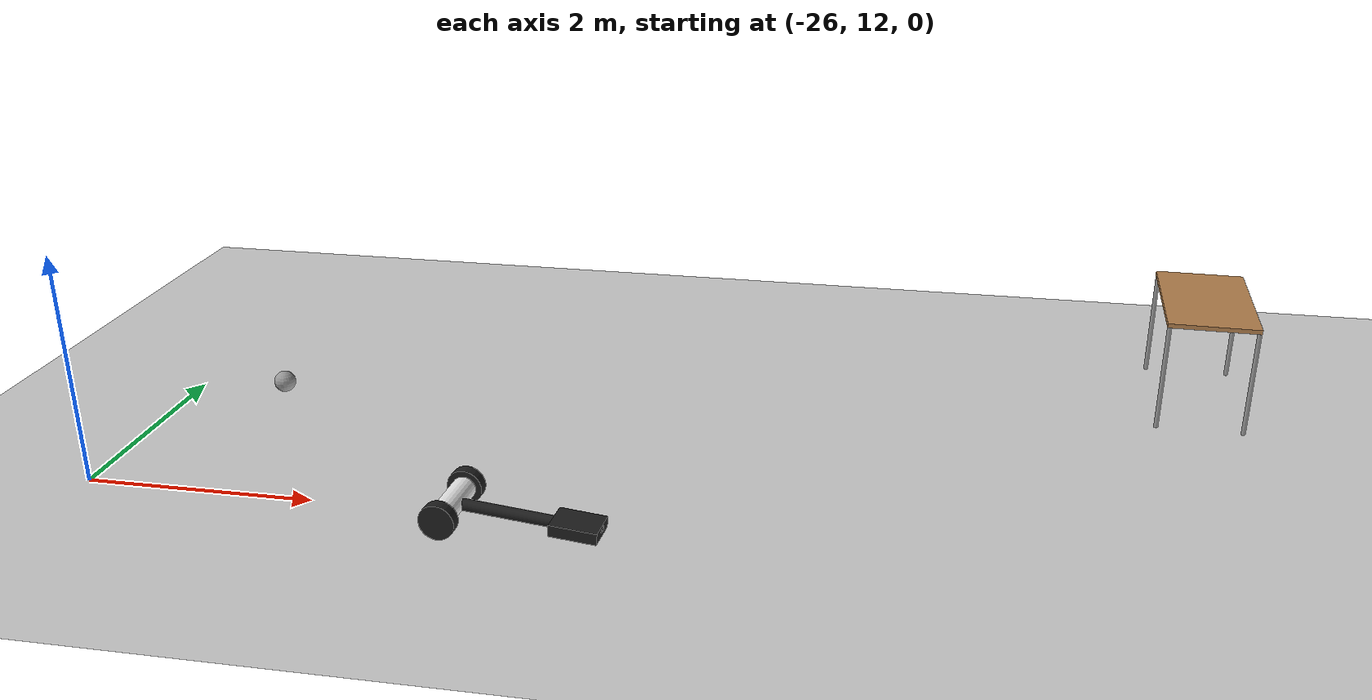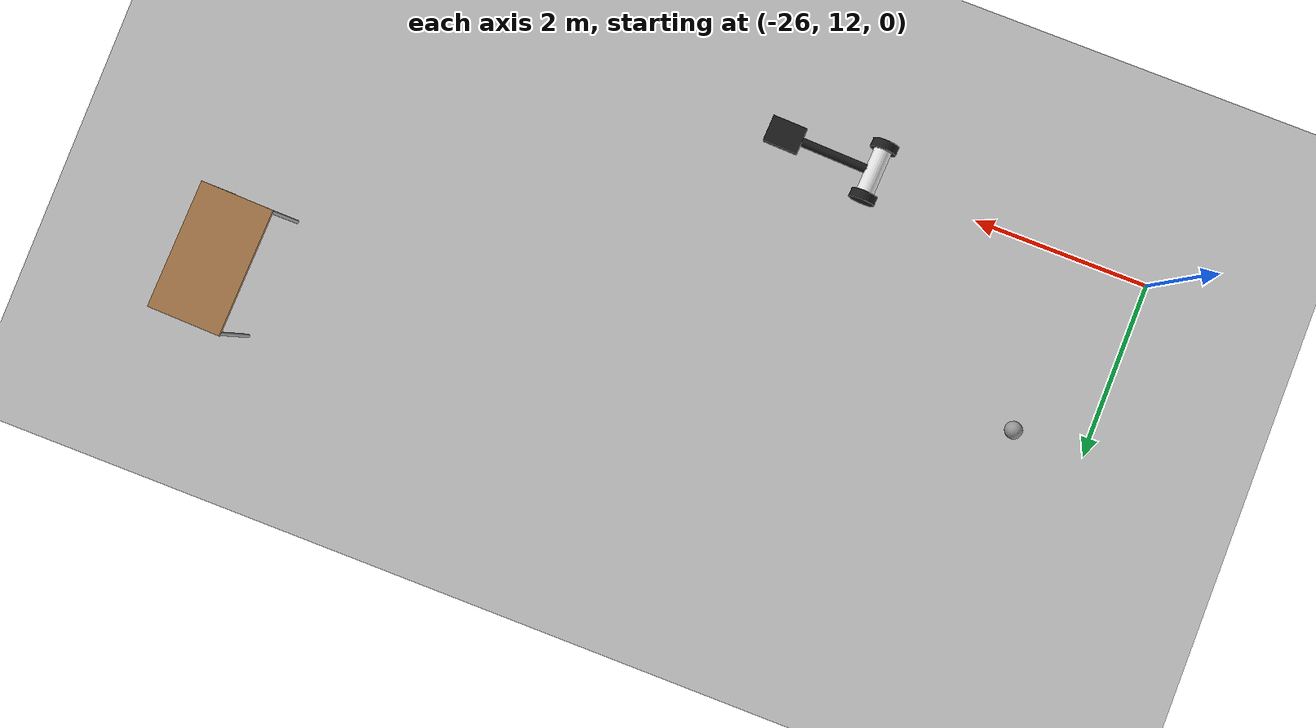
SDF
<sdf version="1.6">
 <world name="default">
  <model name="ground_plane">
   <static>1</static>
   <link name="link">
    <collision name="collision">
     <geometry><plane><normal>0 0 1</normal><size>100 100</size></plane></geometry>
     <surface><friction><ode><mu>100</mu><mu2>50</mu2></ode></friction></surface>
    </collision>
    <visual name="visual">
     <cast_shadows>0</cast_shadows>
     <geometry><plane><normal>0 0 1</normal><size>100 100</size></plane></geometry>
     <material>
      <script><uri>file://media/materials/scripts/gazebo.material</uri><name>Gazebo/Grey</name></script>
     </material>
    </visual>
   </link>
  </model>
  <model name="telepresence_robot">
   <link name="link_4">
    <pose>0 0 -0.15625 1.5707 -0 0</pose>
    <inertial>
     <mass>1</mass>
     <inertia><ixx>0.145833</ixx><ixy>0</ixy><ixz>0</ixz><iyy>0.145833</iyy><iyz>0</iyz><izz>0.125</izz></inertia>
    </inertial>
    <visual name="visual">
     <geometry><cylinder><radius>0.1</radius><length>0.5</length></cylinder></geometry>
     <material>
      <lighting>1</lighting>
      <script><uri>file://media/materials/scripts/gazebo.material</uri><name>Gazebo/White</name></script>
      <shader type="vertex"><normal_map>__default__</normal_map></shader>
     </material>
    </visual>
    <collision name="collision">
     <geometry><cylinder><radius>0.1</radius><length>0.5</length></cylinder></geometry>
     <surface>
      <friction>
       <ode><mu>1</mu><mu2>1</mu2><fdir1>0 0 0</fdir1><slip1>0</slip1><slip2>0</slip2></ode>
       <torsional>
        <coefficient>1</coefficient>
        <patch_radius>0</patch_radius>
        <surface_radius>0</surface_radius>
        <use_patch_radius>1</use_patch_radius>
        <ode><slip>0</slip></ode>
       </torsional>
      </friction>
      <bounce><restitution_coefficient>0</restitution_coefficient><threshold>1e+06</threshold></bounce>
      <contact>
       <collide_without_contact>0</collide_without_contact>
       <collide_without_contact_bitmask>1</collide_without_contact_bitmask>
       <collide_bitmask>1</collide_bitmask>
       <ode>
        <soft_cfm>0</soft_cfm>
        <soft_erp>0.2</soft_erp>
        <kp>1e+13</kp>
        <kd>1</kd>
        <max_vel>0.01</max_vel>
        <min_depth>0</min_depth>
       </ode>
       <bullet>
        <split_impulse>1</split_impulse>
        <split_impulse_penetration_threshold>-0.01</split_impulse_penetration_threshold>
        <soft_cfm>0</soft_cfm>
        <soft_erp>0.2</soft_erp>
        <kp>1e+13</kp>
        <kd>1</kd>
       </bullet>
      </contact>
     </surface>
    </collision>
   </link>
   <link name="link_5">
    <pose>0 -0.300024 -0.15625 1.5707 -0 0</pose>
    <inertial>
     <mass>1</mass>
     <inertia><ixx>0.145833</ixx><ixy>0</ixy><ixz>0</ixz><iyy>0.145833</iyy><iyz>0</iyz><izz>0.125</izz></inertia>
    </inertial>
    <visual name="visual">
     <geometry><cylinder><radius>0.15</radius><length>0.1</length></cylinder></geometry>
     <material>
      <lighting>1</lighting>
      <script><uri>file://media/materials/scripts/gazebo.material</uri><name>Gazebo/Black</name></script>
      <shader type="vertex"><normal_map>__default__</normal_map></shader>
     </material>
    </visual>
    <collision name="collision">
     <geometry><cylinder><radius>0.15</radius><length>0.1</length></cylinder></geometry>
     <surface>
      <friction>
       <ode><mu>1</mu><mu2>1</mu2><fdir1>0 0 0</fdir1><slip1>0</slip1><slip2>0</slip2></ode>
       <torsional>
        <coefficient>1</coefficient>
        <patch_radius>0</patch_radius>
        <surface_radius>0</surface_radius>
        <use_patch_radius>1</use_patch_radius>
        <ode><slip>0</slip></ode>
       </torsional>
      </friction>
      <bounce><restitution_coefficient>0</restitution_coefficient><threshold>1e+06</threshold></bounce>
      <contact>
       <collide_without_contact>0</collide_without_contact>
       <collide_without_contact_bitmask>1</collide_without_contact_bitmask>
       <collide_bitmask>1</collide_bitmask>
       <ode>
        <soft_cfm>0</soft_cfm>
        <soft_erp>0.2</soft_erp>
        <kp>1e+13</kp>
        <kd>1</kd>
        <max_vel>0.01</max_vel>
        <min_depth>0</min_depth>
       </ode>
       <bullet>
        <split_impulse>1</split_impulse>
        <split_impulse_penetration_threshold>-0.01</split_impulse_penetration_threshold>
        <soft_cfm>0</soft_cfm>
        <soft_erp>0.2</soft_erp>
        <kp>1e+13</kp>
        <kd>1</kd>
       </bullet>
      </contact>
     </surface>
    </collision>
   </link>
   <link name="link_5_clone">
    <pose>0 0.300024 -0.15625 1.5707 -0 0</pose>
    <inertial>
     <mass>1</mass>
     <inertia><ixx>0.145833</ixx><ixy>0</ixy><ixz>0</ixz><iyy>0.145833</iyy><iyz>0</iyz><izz>0.125</izz></inertia>
    </inertial>
    <visual name="visual">
     <geometry><cylinder><radius>0.15</radius><length>0.1</length></cylinder></geometry>
     <material>
      <lighting>1</lighting>
      <script><uri>file://media/materials/scripts/gazebo.material</uri><name>Gazebo/Black</name></script>
      <shader type="vertex"><normal_map>__default__</normal_map></shader>
     </material>
    </visual>
    <collision name="collision">
     <geometry><cylinder><radius>0.15</radius><length>0.1</length></cylinder></geometry>
     <surface>
      <friction>
       <ode><mu>1</mu><mu2>1</mu2><fdir1>0 0 0</fdir1><slip1>0</slip1><slip2>0</slip2></ode>
       <torsional>
        <coefficient>1</coefficient>
        <patch_radius>0</patch_radius>
        <surface_radius>0</surface_radius>
        <use_patch_radius>1</use_patch_radius>
        <ode><slip>0</slip></ode>
       </torsional>
      </friction>
      <bounce><restitution_coefficient>0</restitution_coefficient><threshold>1e+06</threshold></bounce>
      <contact>
       <collide_without_contact>0</collide_without_contact>
       <collide_without_contact_bitmask>1</collide_without_contact_bitmask>
       <collide_bitmask>1</collide_bitmask>
       <ode>
        <soft_cfm>0</soft_cfm>
        <soft_erp>0.2</soft_erp>
        <kp>1e+13</kp>
        <kd>1</kd>
        <max_vel>0.01</max_vel>
        <min_depth>0</min_depth>
       </ode>
       <bullet>
        <split_impulse>1</split_impulse>
        <split_impulse_penetration_threshold>-0.01</split_impulse_penetration_threshold>
        <soft_cfm>0</soft_cfm>
        <soft_erp>0.2</soft_erp>
        <kp>1e+13</kp>
        <kd>1</kd>
       </bullet>
      </contact>
     </surface>
    </collision>
   </link>
   <link name="link_6">
    <pose>0 -0 0.46875 0 -0 0</pose>
    <inertial>
     <mass>1</mass>
     <inertia><ixx>0.145833</ixx><ixy>0</ixy><ixz>0</ixz><iyy>0.145833</iyy><iyz>0</iyz><izz>0.125</izz></inertia>
    </inertial>
    <visual name="visual">
     <geometry><cylinder><radius>0.05</radius><length>1.25</length></cylinder></geometry>
     <material>
      <lighting>1</lighting>
      <script><uri>file://media/materials/scripts/gazebo.material</uri><name>Gazebo/Black</name></script>
      <shader type="vertex"><normal_map>__default__</normal_map></shader>
     </material>
    </visual>
    <collision name="collision">
     <geometry><cylinder><radius>0.05</radius><length>1.25</length></cylinder></geometry>
     <surface>
      <friction>
       <ode><mu>1</mu><mu2>1</mu2><fdir1>0 0 0</fdir1><slip1>0</slip1><slip2>0</slip2></ode>
       <torsional>
        <coefficient>1</coefficient>
        <patch_radius>0</patch_radius>
        <surface_radius>0</surface_radius>
        <use_patch_radius>1</use_patch_radius>
        <ode><slip>0</slip></ode>
       </torsional>
      </friction>
      <bounce><restitution_coefficient>0</restitution_coefficient><threshold>1e+06</threshold></bounce>
      <contact>
       <collide_without_contact>0</collide_without_contact>
       <collide_without_contact_bitmask>1</collide_without_contact_bitmask>
       <collide_bitmask>1</collide_bitmask>
       <ode>
        <soft_cfm>0</soft_cfm>
        <soft_erp>0.2</soft_erp>
        <kp>1e+13</kp>
        <kd>1</kd>
        <max_vel>0.01</max_vel>
        <min_depth>0</min_depth>
       </ode>
       <bullet>
        <split_impulse>1</split_impulse>
        <split_impulse_penetration_threshold>-0.01</split_impulse_penetration_threshold>
        <soft_cfm>0</soft_cfm>
        <soft_erp>0.2</soft_erp>
        <kp>1e+13</kp>
        <kd>1</kd>
       </bullet>
      </contact>
     </surface>
    </collision>
   </link>
   <link name="link_8">
    <pose>0 3e-06 0.89375 -4e-06 0 0</pose>
    <inertial>
     <mass>1</mass>
     <inertia>
      <ixx>0.166667</ixx>
      <ixy>0</ixy>
      <ixz>0</ixz>
      <iyy>0.166667</iyy>
      <iyz>0</iyz>
      <izz>0.166667</izz>
     </inertia>
    </inertial>
    <visual name="visual">
     <geometry><box><size>0.1 0.3 0.4</size></box></geometry>
     <material>
      <lighting>1</lighting>
      <script><uri>file://media/materials/scripts/gazebo.material</uri><name>Gazebo/Black</name></script>
      <shader type="vertex"><normal_map>__default__</normal_map></shader>
     </material>
    </visual>
    <collision name="collision">
     <geometry><box><size>0.1 0.3 0.4</size></box></geometry>
     <surface>
      <friction>
       <ode><mu>1</mu><mu2>1</mu2><fdir1>0 0 0</fdir1><slip1>0</slip1><slip2>0</slip2></ode>
       <torsional>
        <coefficient>1</coefficient>
        <patch_radius>0</patch_radius>
        <surface_radius>0</surface_radius>
        <use_patch_radius>1</use_patch_radius>
        <ode><slip>0</slip></ode>
       </torsional>
      </friction>
      <bounce><restitution_coefficient>0</restitution_coefficient><threshold>1e+06</threshold></bounce>
      <contact>
       <collide_without_contact>0</collide_without_contact>
       <collide_without_contact_bitmask>1</collide_without_contact_bitmask>
       <collide_bitmask>1</collide_bitmask>
       <ode>
        <soft_cfm>0</soft_cfm>
        <soft_erp>0.2</soft_erp>
        <kp>1e+13</kp>
        <kd>1</kd>
        <max_vel>0.01</max_vel>
        <min_depth>0</min_depth>
       </ode>
       <bullet>
        <split_impulse>1</split_impulse>
        <split_impulse_penetration_threshold>-0.01</split_impulse_penetration_threshold>
        <soft_cfm>0</soft_cfm>
        <soft_erp>0.2</soft_erp>
        <kp>1e+13</kp>
        <kd>1</kd>
       </bullet>
      </contact>
     </surface>
    </collision>
   </link>
   <joint name="link_4_JOINT_6" type="revolute">
    <parent>link_4</parent>
    <child>link_5</child>
    <axis>
     <xyz>0 0 1</xyz>
     <use_parent_model_frame>0</use_parent_model_frame>
     <limit>
      <lower>-1.79769e+308</lower>
      <upper>1.79769e+308</upper>
      <effort>-1</effort>
      <velocity>-1</velocity>
     </limit>
     <dynamics>
      <spring_reference>0</spring_reference>
      <spring_stiffness>0</spring_stiffness>
      <damping>0</damping>
      <friction>0</friction>
     </dynamics>
    </axis>
    <physics>
     <ode><limit><cfm>0</cfm><erp>0.2</erp></limit><suspension><cfm>0</cfm><erp>0.2</erp></suspension></ode>
    </physics>
   </joint>
   <joint name="link_4_JOINT_7" type="revolute">
    <parent>link_4</parent>
    <child>link_5_clone</child>
    <axis>
     <xyz>0 0 1</xyz>
     <use_parent_model_frame>0</use_parent_model_frame>
     <limit>
      <lower>-1.79769e+308</lower>
      <upper>1.79769e+308</upper>
      <effort>-1</effort>
      <velocity>-1</velocity>
     </limit>
     <dynamics>
      <spring_reference>0</spring_reference>
      <spring_stiffness>0</spring_stiffness>
      <damping>0</damping>
      <friction>0</friction>
     </dynamics>
    </axis>
    <physics>
     <ode><limit><cfm>0</cfm><erp>0.2</erp></limit><suspension><cfm>0</cfm><erp>0.2</erp></suspension></ode>
    </physics>
   </joint>
   <joint name="link_4_JOINT_8" type="fixed">
    <parent>link_4</parent>
    <child>link_6</child>
    <physics>
     <ode><limit><cfm>0</cfm><erp>0.2</erp></limit><suspension><cfm>0</cfm><erp>0.2</erp></suspension></ode>
    </physics>
   </joint>
   <joint name="link_6_JOINT_11" type="fixed">
    <parent>link_6</parent>
    <child>link_8</child>
    <physics>
     <ode><limit><cfm>0</cfm><erp>0.2</erp></limit><suspension><cfm>0</cfm><erp>0.2</erp></suspension></ode>
    </physics>
   </joint>
   <static>0</static>
   <pose>-22.5901 11.9163 0.137476 -3.14148 1.49057 3.09492</pose>
  </model>
  <model name="table_clone_clone_0">
   <static>0</static>
   <link name="link">
    <collision name="surface">
     <pose>0 0 1 0 -0 0</pose>
     <geometry><box><size>1.5 0.8 0.03</size></box></geometry>
     <surface><friction><ode><mu>0.6</mu><mu2>0.6</mu2></ode></friction></surface>
    </collision>
    <visual name="visual1">
     <pose>0 0 1 0 -0 0</pose>
     <geometry><box><size>1.4 0.8 0.04</size></box></geometry>
     <material>
      <script><uri>file://media/materials/scripts/gazebo.material</uri><name>Gazebo/Wood</name></script>
     </material>
    </visual>
    <collision name="front_left_leg">
     <pose>0.68 0.38 0.5 0 -0 0</pose>
     <geometry><cylinder><radius>0.02</radius><length>1</length></cylinder></geometry>
    </collision>
    <visual name="front_left_leg">
     <pose>0.68 0.38 0.5 0 -0 0</pose>
     <geometry><cylinder><radius>0.02</radius><length>1</length></cylinder></geometry>
     <material>
      <script><uri>file://media/materials/scripts/gazebo.material</uri><name>Gazebo/Grey</name></script>
     </material>
    </visual>
    <collision name="front_right_leg">
     <pose>0.68 -0.38 0.5 0 -0 0</pose>
     <geometry><cylinder><radius>0.02</radius><length>1</length></cylinder></geometry>
    </collision>
    <visual name="front_right_leg">
     <pose>0.68 -0.38 0.5 0 -0 0</pose>
     <geometry><cylinder><radius>0.02</radius><length>1</length></cylinder></geometry>
     <material>
      <script><uri>file://media/materials/scripts/gazebo.material</uri><name>Gazebo/Grey</name></script>
     </material>
    </visual>
    <collision name="back_right_leg">
     <pose>-0.68 -0.38 0.5 0 -0 0</pose>
     <geometry><cylinder><radius>0.02</radius><length>1</length></cylinder></geometry>
    </collision>
    <visual name="back_right_leg">
     <pose>-0.68 -0.38 0.5 0 -0 0</pose>
     <geometry><cylinder><radius>0.02</radius><length>1</length></cylinder></geometry>
     <material>
      <script><uri>file://media/materials/scripts/gazebo.material</uri><name>Gazebo/Grey</name></script>
     </material>
    </visual>
    <collision name="back_left_leg">
     <pose>-0.68 0.38 0.5 0 -0 0</pose>
     <geometry><cylinder><radius>0.02</radius><length>1</length></cylinder></geometry>
    </collision>
    <visual name="back_left_leg">
     <pose>-0.68 0.38 0.5 0 -0 0</pose>
     <geometry><cylinder><radius>0.02</radius><length>1</length></cylinder></geometry>
     <material>
      <script><uri>file://media/materials/scripts/gazebo.material</uri><name>Gazebo/Grey</name></script>
     </material>
    </visual>
    <inertial>
     <inertia><ixx>1</ixx><ixy>0</ixy><ixz>0</ixz><iyy>1</iyy><iyz>0</iyz><izz>1</izz></inertia>
     <mass>1</mass>
    </inertial>
   </link>
   <pose>-16.6219 15.3658 -6e-06 0 0 -1.59647</pose>
  </model>
  <model name="my_ball">
   <link name="link_0">
    <inertial>
     <mass>1</mass>
     <inertia><ixx>0.1</ixx><ixy>0</ixy><ixz>0</ixz><iyy>0.1</iyy><iyz>0</iyz><izz>0.1</izz></inertia>
    </inertial>
    <visual name="visual">
     <geometry><sphere><radius>0.1</radius></sphere></geometry>
     <material>
      <lighting>1</lighting>
      <script><uri>file://media/materials/scripts/gazebo.material</uri><name>Gazebo/Grey</name></script>
      <ambient>1 1 1 1</ambient>
      <diffuse>1 1 1 1</diffuse>
      <specular>1 1 1 1</specular>
      <emissive>1 1 1 1</emissive>
      <shader type="vertex"><normal_map>__default__</normal_map></shader>
     </material>
    </visual>
    <collision name="collision">
     <geometry><sphere><radius>0.1</radius></sphere></geometry>
     <surface>
      <friction>
       <ode><mu>1</mu><mu2>1</mu2><fdir1>0 0 0</fdir1><slip1>0</slip1><slip2>0</slip2></ode>
       <torsional>
        <coefficient>1</coefficient>
        <patch_radius>0</patch_radius>
        <surface_radius>0</surface_radius>
        <use_patch_radius>1</use_patch_radius>
        <ode><slip>0</slip></ode>
       </torsional>
      </friction>
      <bounce><restitution_coefficient>0</restitution_coefficient><threshold>1e+06</threshold></bounce>
      <contact>
       <collide_without_contact>0</collide_without_contact>
       <collide_without_contact_bitmask>1</collide_without_contact_bitmask>
       <collide_bitmask>1</collide_bitmask>
       <ode>
        <soft_cfm>0</soft_cfm>
        <soft_erp>0.2</soft_erp>
        <kp>1e+13</kp>
        <kd>1</kd>
        <max_vel>0.01</max_vel>
        <min_depth>0</min_depth>
       </ode>
       <bullet>
        <split_impulse>1</split_impulse>
        <split_impulse_penetration_threshold>-0.01</split_impulse_penetration_threshold>
        <soft_cfm>0</soft_cfm>
        <soft_erp>0.2</soft_erp>
        <kp>1e+13</kp>
        <kd>1</kd>
       </bullet>
      </contact>
     </surface>
    </collision>
   </link>
   <static>0</static>
   <pose>-25.1646 14.0086 0.1 0 -0 0</pose>
  </model>
 </world>
</sdf>
